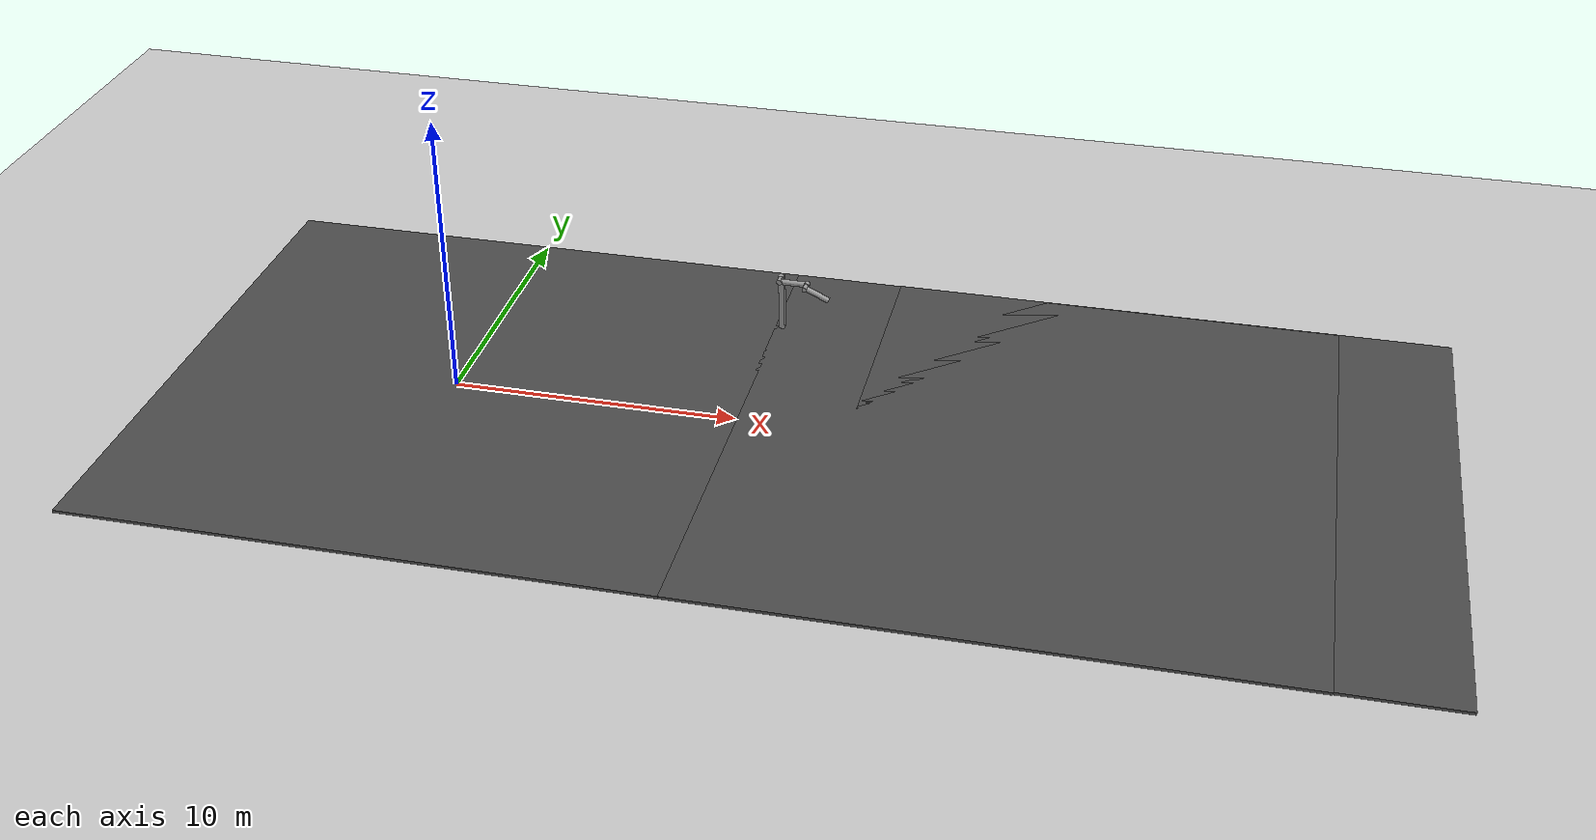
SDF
<sdf version="1.7">
 <world name="default">
  <light name="sun" type="directional">
   <pose>0 0 10 0 -0 0</pose>
   <diffuse>0.8 0.8 0.8 1</diffuse>
   <specular>0.2 0.2 0.2 1</specular>
   <attenuation>
    <range>1000</range>
    <constant>0.9</constant>
    <linear>0.01</linear>
    <quadratic>0.001</quadratic>
   </attenuation>
   <direction>-0.5 0.1 -0.9</direction>
   <spot><inner_angle>0</inner_angle><outer_angle>0</outer_angle><falloff>0</falloff></spot>
  </light>
  <model name="ground_plane">
   <static>1</static>
   <link name="link">
    <collision name="collision">
     <geometry><plane><normal>0 0 1</normal><size>100 100</size></plane></geometry>
     <surface>
      <contact><collide_bitmask>65535</collide_bitmask></contact>
      <friction><ode><mu>100</mu><mu2>50</mu2></ode></friction>
     </surface>
    </collision>
    <visual name="visual">
     <cast_shadows>0</cast_shadows>
     <geometry><plane><normal>0 0 1</normal><size>100 100</size></plane></geometry>
     <material>
      <script><uri>file://media/materials/scripts/gazebo.material</uri><name>Gazebo/Grey</name></script>
     </material>
    </visual>
   </link>
  </model>
  <gravity>0 0 -9.8</gravity>
  <magnetic_field>6e-06 2.3e-05 -4.2e-05</magnetic_field>
  <atmosphere type="adiabatic"/>
  <physics type="ode">
   <max_step_size>0.001</max_step_size>
   <real_time_factor>1</real_time_factor>
   <real_time_update_rate>1000</real_time_update_rate>
  </physics>
  <scene><ambient>0.4 0.4 0.4 1</ambient><background>0.7 0.7 0.7 1</background><shadows>1</shadows></scene>
  <spherical_coordinates>
   <surface_model>EARTH_WGS84</surface_model>
   <latitude_deg>0</latitude_deg>
   <longitude_deg>0</longitude_deg>
   <elevation>0</elevation>
   <heading_deg>0</heading_deg>
  </spherical_coordinates>
  <model name="asphalt_plane">
   <static>1</static>
   <link name="link">
    <collision name="collision"><geometry><box><size>20 20 0.1</size></box></geometry></collision>
    <visual name="visual">
     <cast_shadows>0</cast_shadows>
     <geometry><box><size>20 20 0.1</size></box></geometry>
     <material>
      <script>
       <uri>model://asphalt_plane/materials/scripts</uri>
       <uri>model://asphalt_plane/materials/textures</uri>
       <name>vrc/asphalt</name>
      </script>
     </material>
    </visual>
   </link>
   <pose>0.070149 0.037311 0 0 -0 0</pose>
  </model>
  <model name="asphalt_plane_0">
   <static>1</static>
   <link name="link">
    <collision name="collision"><geometry><box><size>20 20 0.1</size></box></geometry></collision>
    <visual name="visual">
     <cast_shadows>0</cast_shadows>
     <geometry><box><size>20 20 0.1</size></box></geometry>
     <material>
      <script>
       <uri>model://asphalt_plane/materials/scripts</uri>
       <uri>model://asphalt_plane/materials/textures</uri>
       <name>vrc/asphalt</name>
      </script>
     </material>
    </visual>
   </link>
   <pose>19.9704 0.045779 0 0 -0 0</pose>
  </model>
  <model name="double_pendulum_with_base">
   <link name="base">
    <inertial>
     <mass>100</mass>
     <inertia><ixx>1</ixx><ixy>0</ixy><ixz>0</ixz><iyy>1</iyy><iyz>0</iyz><izz>1</izz></inertia>
    </inertial>
    <visual name="vis_plate_on_ground">
     <pose>0 0 0.01 0 -0 0</pose>
     <geometry><cylinder><radius>0.8</radius><length>0.02</length></cylinder></geometry>
     <material>
      <script><uri>file://media/materials/scripts/gazebo.material</uri><name>Gazebo/Grey</name></script>
     </material>
    </visual>
    <visual name="vis_pole">
     <pose>-0.275 0 1.1 0 -0 0</pose>
     <geometry><box><size>0.2 0.2 2.2</size></box></geometry>
     <material>
      <script><uri>file://media/materials/scripts/gazebo.material</uri><name>Gazebo/Grey</name></script>
     </material>
    </visual>
    <collision name="col_plate_on_ground">
     <pose>0 0 0.01 0 -0 0</pose>
     <geometry><cylinder><radius>0.8</radius><length>0.02</length></cylinder></geometry>
    </collision>
    <collision name="col_pole">
     <pose>-0.275 0 1.1 0 -0 0</pose>
     <geometry><box><size>0.2 0.2 2.2</size></box></geometry>
    </collision>
   </link>
   <link name="upper_link">
    <pose>0 0 2.1 -1.5708 0 0</pose>
    <inertial>
     <pose>0 0 0.5 0 -0 0</pose>
     <inertia><ixx>1</ixx><ixy>0</ixy><ixz>0</ixz><iyy>1</iyy><iyz>0</iyz><izz>1</izz></inertia>
     <mass>1</mass>
    </inertial>
    <visual name="vis_upper_joint">
     <pose>-0.05 0 0 3.14159 1.57079 3.14159</pose>
     <geometry><cylinder><radius>0.1</radius><length>0.3</length></cylinder></geometry>
     <material>
      <script><uri>file://media/materials/scripts/gazebo.material</uri><name>Gazebo/Grey</name></script>
     </material>
    </visual>
    <visual name="vis_lower_joint">
     <pose>0 0 1 3.14159 1.57079 3.14159</pose>
     <geometry><cylinder><radius>0.1</radius><length>0.2</length></cylinder></geometry>
     <material>
      <script><uri>file://media/materials/scripts/gazebo.material</uri><name>Gazebo/Grey</name></script>
     </material>
    </visual>
    <visual name="vis_cylinder">
     <pose>0 0 0.5 0 -0 0</pose>
     <geometry><cylinder><radius>0.1</radius><length>0.9</length></cylinder></geometry>
     <material>
      <script><uri>file://media/materials/scripts/gazebo.material</uri><name>Gazebo/Grey</name></script>
     </material>
    </visual>
    <collision name="col_upper_joint">
     <pose>-0.05 0 0 3.14159 1.57079 3.14159</pose>
     <geometry><cylinder><radius>0.1</radius><length>0.3</length></cylinder></geometry>
    </collision>
    <collision name="col_lower_joint">
     <pose>0 0 1 3.14159 1.57079 3.14159</pose>
     <geometry><cylinder><radius>0.1</radius><length>0.2</length></cylinder></geometry>
    </collision>
    <collision name="col_cylinder">
     <pose>0 0 0.5 0 -0 0</pose>
     <geometry><cylinder><radius>0.1</radius><length>0.9</length></cylinder></geometry>
    </collision>
   </link>
   <link name="lower_link">
    <pose>0.25 1 2.1 -2 0 0</pose>
    <inertial>
     <pose>0 0 0.5 0 -0 0</pose>
     <inertia><ixx>1</ixx><ixy>0</ixy><ixz>0</ixz><iyy>1</iyy><iyz>0</iyz><izz>1</izz></inertia>
     <mass>1</mass>
    </inertial>
    <visual name="vis_lower_joint">
     <pose>0 0 0 3.14159 1.57079 3.14159</pose>
     <geometry><cylinder><radius>0.08</radius><length>0.3</length></cylinder></geometry>
     <material>
      <script><uri>file://media/materials/scripts/gazebo.material</uri><name>Gazebo/Grey</name></script>
     </material>
    </visual>
    <visual name="vis_cylinder">
     <pose>0 0 0.5 0 -0 0</pose>
     <geometry><cylinder><radius>0.1</radius><length>0.9</length></cylinder></geometry>
     <material>
      <script><uri>file://media/materials/scripts/gazebo.material</uri><name>Gazebo/Grey</name></script>
     </material>
    </visual>
    <collision name="col_lower_joint">
     <pose>0 0 0 3.14159 1.57079 3.14159</pose>
     <geometry><cylinder><radius>0.08</radius><length>0.3</length></cylinder></geometry>
    </collision>
    <collision name="col_cylinder">
     <pose>0 0 0.5 0 -0 0</pose>
     <geometry><cylinder><radius>0.1</radius><length>0.9</length></cylinder></geometry>
    </collision>
   </link>
   <joint name="upper_joint" type="revolute">
    <parent>base</parent>
    <child>upper_link</child>
    <axis>
     <xyz>1 0 0</xyz>
     <limit><lower>-1e+16</lower><upper>1e+16</upper></limit>
     <dynamics><spring_reference>0</spring_reference><spring_stiffness>0</spring_stiffness></dynamics>
    </axis>
   </joint>
   <joint name="lower_joint" type="revolute">
    <parent>upper_link</parent>
    <child>lower_link</child>
    <axis>
     <xyz>1 0 0</xyz>
     <limit><lower>-1e+16</lower><upper>1e+16</upper></limit>
     <dynamics><spring_reference>0</spring_reference><spring_stiffness>0</spring_stiffness></dynamics>
    </axis>
   </joint>
   <pose>10.2089 5.91812 0 0.009696 0 -1.60182</pose>
  </model>
  <model name="asphalt_plane_1">
   <static>1</static>
   <link name="link">
    <collision name="collision"><geometry><box><size>20 20 0.1</size></box></geometry></collision>
    <visual name="visual">
     <cast_shadows>0</cast_shadows>
     <geometry><box><size>20 20 0.1</size></box></geometry>
     <material>
      <script>
       <uri>model://asphalt_plane/materials/scripts</uri>
       <uri>model://asphalt_plane/materials/textures</uri>
       <name>vrc/asphalt</name>
      </script>
     </material>
    </visual>
   </link>
   <pose>23.9061 0.069991 0 0 -0 0</pose>
  </model>
 </world>
</sdf>
